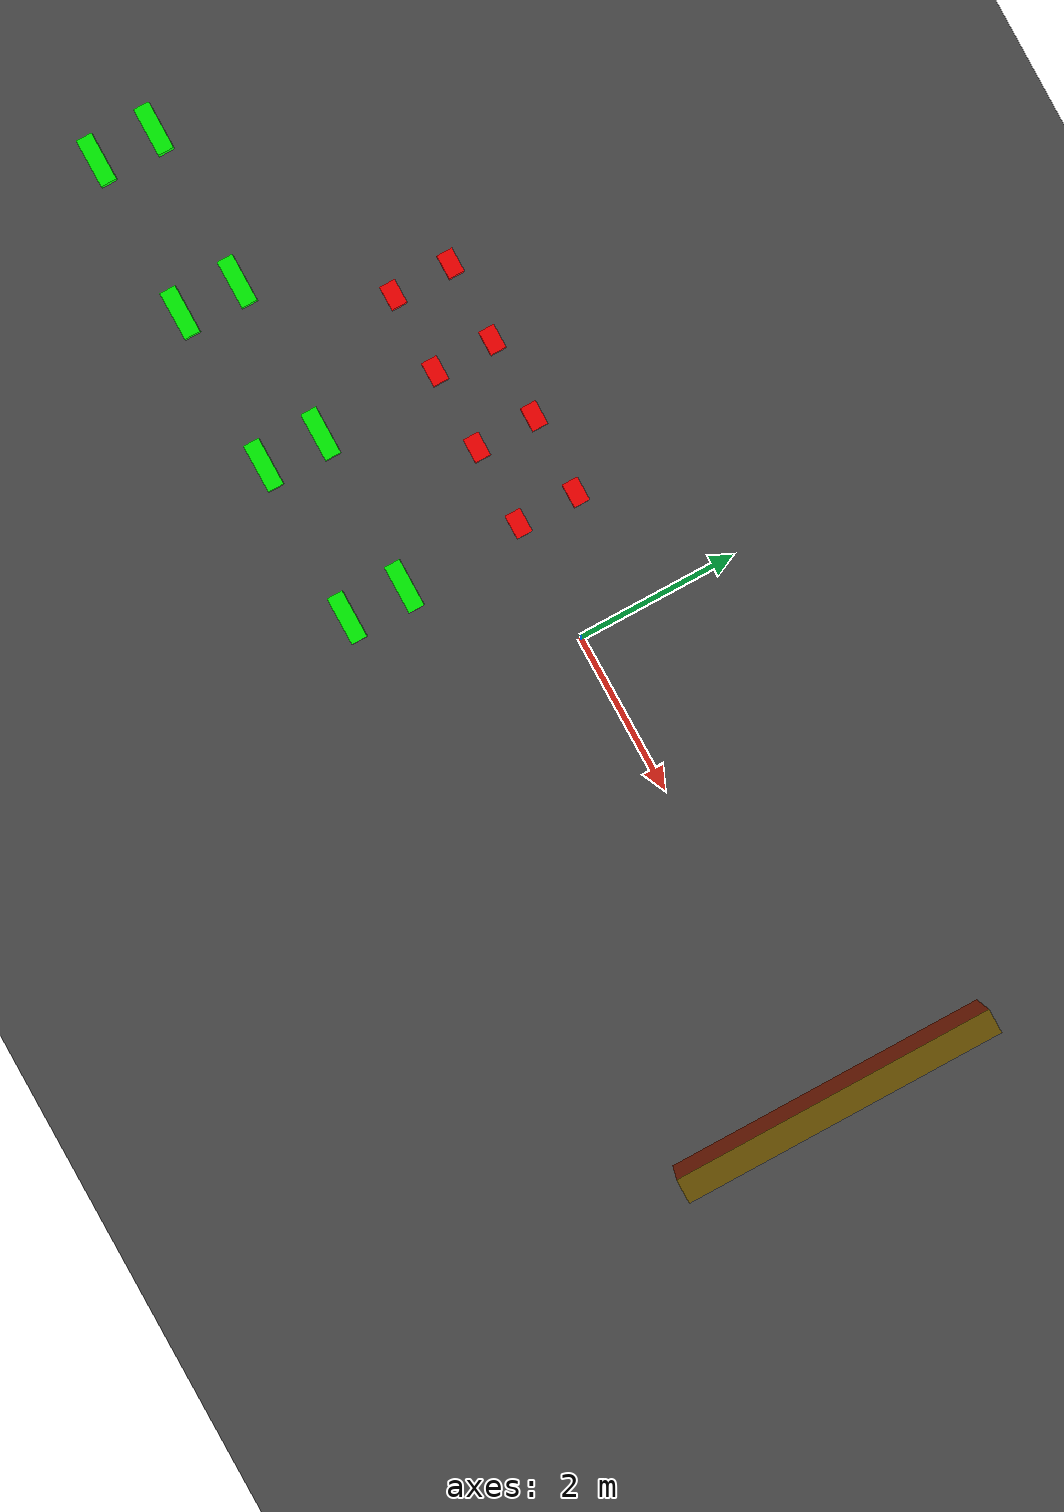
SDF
<?xml version="1.0" ?>
<sdf version='1.4'>
  <world name='default'>

    <physics type='ode'>
      <max_step_size>0.001</max_step_size>
      <real_time_factor>1</real_time_factor>
      <real_time_update_rate>1000</real_time_update_rate>
      <gravity>0 0 -9.8</gravity>
    </physics>

    <spherical_coordinates>
      <surface_model>EARTH_WGS84</surface_model>
      <latitude_deg>0</latitude_deg>
      <longitude_deg>0</longitude_deg>
      <elevation>0</elevation>
      <heading_deg>0</heading_deg>
    </spherical_coordinates>

    <!-- A global light source -->
   <scene>
      <sky>
        <clouds>
          <speed>12</speed>
        </clouds>
      </sky>
      <ambient>0.7 0.7 0.7 1</ambient>
      <background>0.1 0.1 0.1 1</background>
   </scene>

    <include>
      <uri>model://sun</uri>
    </include>

    <model name="ground_plane">
      <static>true</static>
      <link name="link">
        <collision name="collision">
          <geometry>
            <plane>
              <normal>0 0 1</normal>
              <size>20 20</size>
            </plane>
          </geometry>
          <surface>
            <friction>
              <ode>
                <mu>100</mu>
                <mu2>50</mu2>
              </ode>
            </friction>
          </surface>
        </collision>
        <visual name="visual">
          <cast_shadows>false</cast_shadows>
          <geometry>
            <plane>
              <normal>0 0 1</normal>
              <size>20 20</size>
            </plane>
          </geometry>
          <material>
            <script>
              <uri>model://asphalt_plane/materials/scripts</uri>
              <uri>model://asphalt_plane/materials/textures</uri>
              <name>vrc/asphalt</name>
            </script>
          </material>
        </visual>
      </link>
    </model>

    <model name="red_brick_1-1" >
      <pose>-1.5 0 0.15 1.57 0 1.57</pose>
      <include>
        <uri>model://red_brick</uri>
      </include>
    </model>

    <model name="red_brick_1-2" >
      <pose>-2.5 0 0.15 1.57 0 1.57</pose>
      <include>
        <uri>model://red_brick</uri>
      </include>
    </model>

    <model name="red_brick_1-3" >
      <pose>-3.5 0 0.15 1.57 0 1.57</pose>
      <include>
        <uri>model://red_brick</uri>
      </include>
    </model>

    <model name="red_brick_1-4" >
      <pose>-4.5 0 0.15 1.57 0 1.57</pose>
      <include>
        <uri>model://red_brick</uri>
      </include>
    </model>

    <model name="red_brick_2-1" >
      <pose>-1.5 0.75 0.15 1.57 0 1.57</pose>
      <include>
        <uri>model://red_brick</uri>
      </include>
    </model>

    <model name="red_brick_2-2" >
      <pose>-2.5 0.75 0.15 1.57 0 1.57</pose>
      <include>
        <uri>model://red_brick</uri>
      </include>
    </model>

    <model name="red_brick_2-3" >
      <pose>-3.5 0.75 0.15 1.57 0 1.57</pose>
      <include>
        <uri>model://red_brick</uri>
      </include>
    </model>

    <model name="red_brick_2-4" >
      <pose>-4.5 0.75 0.15 1.57 0 1.57</pose>
      <include>
        <uri>model://red_brick</uri>
      </include>
    </model>

    <model name="green_brick_1-1" >
      <pose>-1.5 -1.5 0.15 1.57 0 1.57</pose>
      <include>
        <uri>model://green_brick</uri>
      </include>
    </model>

    <model name="green_brick_1-2" >
      <pose>-3.5 -1.5 0.15 1.57 0 1.57</pose>
      <include>
        <uri>model://green_brick</uri>
      </include>
    </model>

    <model name="green_brick_1-3" >
      <pose>-5.5 -1.5 0.15 1.57 0 1.57</pose>
      <include>
        <uri>model://green_brick</uri>
      </include>
    </model>

    <model name="green_brick_1-4" >
      <pose>-7.5 -1.5 0.15 1.57 0 1.57</pose>
      <include>
        <uri>model://green_brick</uri>
      </include>
    </model>

    <model name="green_brick_2-1" >
      <pose>-1.5 -2.25 0.15 1.57 0 1.57</pose>
      <include>
        <uri>model://green_brick</uri>
      </include>
    </model>

    <model name="green_brick_2-2" >
      <pose>-3.5 -2.25 0.15 1.57 0 1.57</pose>
      <include>
        <uri>model://green_brick</uri>
      </include>
    </model>

    <model name="green_brick_2-3" >
      <pose>-5.5 -2.25 0.15 1.57 0 1.57</pose>
      <include>
        <uri>model://green_brick</uri>
      </include>
    </model>

    <model name="green_brick_2-4" >
      <pose>-7.5 -2.25 0.15 1.57 0 1.57</pose>
      <include>
        <uri>model://green_brick</uri>
      </include>
    </model>

    <model name="construct_place_1" >
      <pose>6 0 0 0 0 1.57</pose>
      <include>
        <uri>model://uchannel_place</uri>
      </include>
    </model>

  </world>
</sdf>

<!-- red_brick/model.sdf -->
<sdf version="1.4">
  <model name='red_brick'>
    <pose>0 0 0 0 0 0</pose>
    <static>false</static>
    <link name='object_link'>
      <inertial>
        <mass>0.4744</mass>
        <inertia> <!-- inertias are tricky to compute -->
          <!-- http://gazebosim.org/tutorials?tut=inertia&cat=build_robot -->
          <ixx>0.01079</ixx>       <!-- for a box: ixx = 0.083 * mass * (y*y + z*z) -->
          <ixy>0.0</ixy>         <!-- for a box: ixy = 0 -->
          <ixz>0.0</ixz>         <!-- for a box: ixz = 0 -->
          <iyy>0.01079</iyy>       <!-- for a box: iyy = 0.083 * mass * (x*x + z*z) -->
          <iyz>0.0</iyz>         <!-- for a box: iyz = 0 -->
          <izz>0.00664</izz>       <!-- for a box: izz = 0.083 * mass * (x*x + y*y) -->
        </inertia>
      </inertial>
      <collision name='collision'>
        <geometry>
          <box>
            <size>0.2 0.2 0.3</size>
          </box>
        </geometry>
        <max_contacts>50</max_contacts>
        <surface>
          <friction>
            <ode>
              <mu>1.5</mu>
              <mu2>1.5</mu2>
              <fdir>1 0 0</fdir>
            </ode>
          </friction>
          <contact>
            <ode>
              <kp>1400000.0</kp>
              <kd>2800.0</kd>
              <maxVel>10.0</maxVel>
              <minDepth>0.00</minDepth>
            </ode>
          </contact>
        </surface>
      </collision>
      <visual name='visual'>
        <geometry>
          <box>
            <size>0.2 0.2 0.3</size>
          </box>
        </geometry>
        <material>
          <ambient>1.0 0.0 0.0 1</ambient>
          <diffuse>1.0 0.0 0.0 1</diffuse>
          <specular>0.01 0.01 0.01 1</specular>
          <emissive>0 0 0 1</emissive>
        </material>
      </visual>
      <self_collide>0</self_collide>
      <kinematic>0</kinematic>
      <gravity>1</gravity>
    </link>
  </model>
</sdf>

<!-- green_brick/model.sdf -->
<sdf version="1.4">
  <model name='green_brick'>
    <pose>0 0 0 0 0 0</pose>
    <static>false</static>
    <link name='object_link'>
      <inertial>
        <mass>0.6994</mass>
        <inertia> <!-- inertias are tricky to compute -->
          <!-- http://gazebosim.org/tutorials?tut=inertia&cat=build_robot -->
          <ixx>0.0332</ixx>       <!-- for a box: ixx = 0.083 * mass * (y*y + z*z) -->
          <ixy>0.0</ixy>         <!-- for a box: ixy = 0 -->
          <ixz>0.0</ixz>         <!-- for a box: ixz = 0 -->
          <iyy>0.0332</iyy>       <!-- for a box: iyy = 0.083 * mass * (x*x + z*z) -->
          <iyz>0.0</iyz>         <!-- for a box: iyz = 0 -->
          <izz>0.00664</izz>       <!-- for a box: izz = 0.083 * mass * (x*x + y*y) -->
        </inertia>
      </inertial>
      <collision name='collision'>
        <geometry>
          <box>
            <size>0.2 0.2 0.6</size>
          </box>
        </geometry>
        <max_contacts>50</max_contacts>
        <surface>
          <friction>
            <ode>
              <mu>1.5</mu>
              <mu2>1.5</mu2>
              <fdir>1 0 0</fdir>
            </ode>
          </friction>
          <contact>
            <ode>
              <kp>1400000.0</kp>
              <kd>2800.0</kd>
              <maxVel>10.0</maxVel>
              <minDepth>0.00</minDepth>
            </ode>
          </contact>
        </surface>
      </collision>
      <visual name='visual'>
        <cast_shadows>0</cast_shadows>
        <geometry>
          <box>
            <size>0.2 0.2 0.6</size>
          </box>
        </geometry>
        <material>
          <ambient>0.0 1.0 0.0 1</ambient>
          <diffuse>0.0 1.0 0.0 1</diffuse>
          <specular>0.01 0.01 0.01 1</specular>
          <emissive>0 0 0 1</emissive>
        </material>
      </visual>
      <self_collide>0</self_collide>
      <kinematic>0</kinematic>
      <gravity>1</gravity>
    </link>
  </model>
</sdf>

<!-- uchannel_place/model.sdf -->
<sdf version="1.4">
  <model name='uchannel_place'>
    <static>1</static>
    <link name='link'>
      <pose>0 0 0 0 0 0</pose>
      <collision name='collision'>
        <geometry>
          <mesh>
            <uri>model://uchannel_place/mesh/uchannel_place_collision.dae</uri>
            <scale>1 1 1</scale>
          </mesh>
        </geometry>
      </collision>
      <visual name='visual'>
        <cast_shadows>1</cast_shadows>
        <transparency>0</transparency>
        <geometry>
          <mesh>
            <uri>model://uchannel_place/mesh/uchannel_place_visual.dae</uri>
            <scale>1 1 1</scale>
          </mesh>
        </geometry>
      </visual>
    </link>
  </model>
</sdf>
